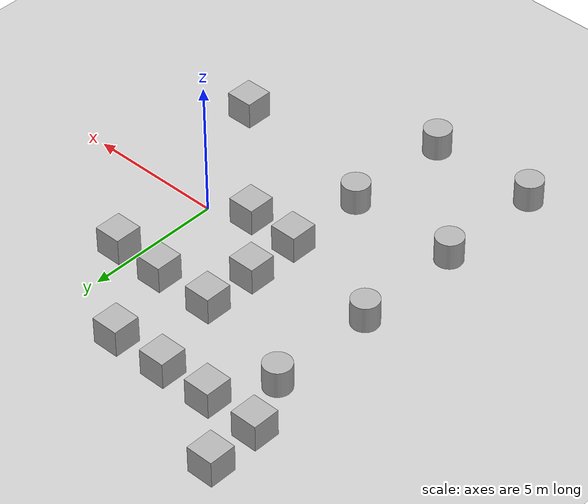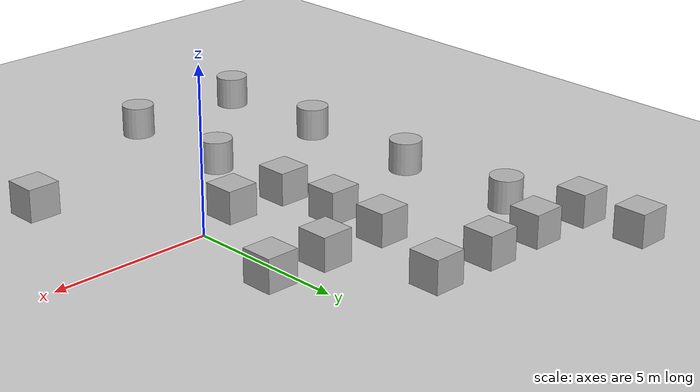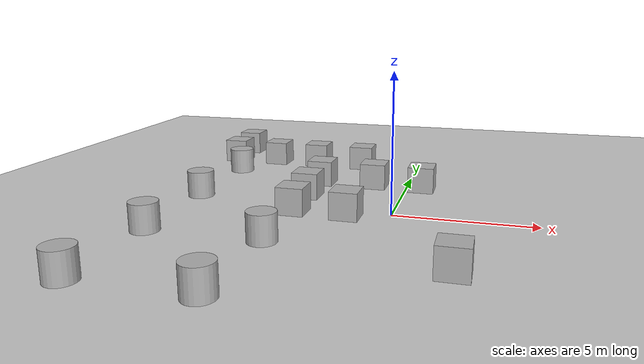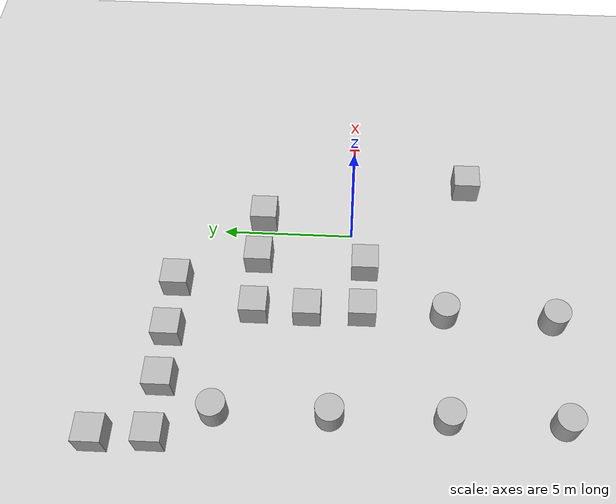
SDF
<sdf version="1.12">
 <world name="empty">
  <model name="ground_plane">
   <static>true</static>
   <link name="link">
    <collision name="collision">
     <geometry><plane><normal>0 0 1</normal><size>100 100</size></plane></geometry>
    </collision>
    <visual name="visual">
     <geometry><plane><normal>0 0 1</normal><size>100 100</size></plane></geometry>
     <material>
      <ambient>0.800000012 0.800000012 0.800000012 1</ambient>
      <diffuse>0.800000012 0.800000012 0.800000012 1</diffuse>
      <specular>0.800000012 0.800000012 0.800000012 1</specular>
     </material>
    </visual>
    <inertial>
     <mass>1</mass>
     <inertia><ixx>1</ixx><ixy>0</ixy><ixz>0</ixz><iyy>1</iyy><iyz>0</iyz><izz>1</izz></inertia>
    </inertial>
   </link>
  </model>
  <model name="box_1">
   <pose>-1.4900658982286914 -0.54602538299168302 0.49999999990199806 6.2287739151293738e-22 9.3279666454713669e-22 -3.6315533669320137e-22</pose>
   <link name="box_link">
    <inertial>
     <inertia><ixx>0.16666</ixx><ixy>0</ixy><ixz>0</ixz><iyy>0.16666</iyy><iyz>0</iyz><izz>0.16666</izz></inertia>
     <mass>1</mass>
    </inertial>
    <collision name="box_collision"><geometry><box><size>1 1 1</size></box></geometry></collision>
    <visual name="box_visual">
     <geometry><box><size>1 1 1</size></box></geometry>
     <material>
      <ambient>0.300000012 0.300000012 0.300000012 1</ambient>
      <diffuse>0.699999988 0.699999988 0.699999988 1</diffuse>
      <specular>1 1 1 1</specular>
     </material>
    </visual>
   </link>
   <static>false</static>
  </model>
  <model name="box_1_1">
   <pose>-3.4321913259403338 -0.49788729154501388 0.49999999990199806 6.2287739151293738e-22 9.3279666454713669e-22 -3.6315533669320137e-22</pose>
   <link name="box_link">
    <inertial>
     <inertia><ixx>0.16666</ixx><ixy>0</ixy><ixz>0</ixz><iyy>0.16666</iyy><iyz>0</iyz><izz>0.16666</izz></inertia>
     <mass>1</mass>
    </inertial>
    <collision name="box_collision"><geometry><box><size>1 1 1</size></box></geometry></collision>
    <visual name="box_visual">
     <geometry><box><size>1 1 1</size></box></geometry>
     <material>
      <ambient>0.300000012 0.300000012 0.300000012 1</ambient>
      <diffuse>0.699999988 0.699999988 0.699999988 1</diffuse>
      <specular>1 1 1 1</specular>
     </material>
    </visual>
   </link>
   <static>false</static>
  </model>
  <model name="box_1_2">
   <pose>-3.5110510468009632 1.515988647667496 0.49999999990199806 -8.9387997357110183e-22 2.0358842462432641e-22 -5.764668221621625e-23</pose>
   <link name="box_link">
    <inertial>
     <inertia><ixx>0.16666</ixx><ixy>0</ixy><ixz>0</ixz><iyy>0.16666</iyy><iyz>0</iyz><izz>0.16666</izz></inertia>
     <mass>1</mass>
    </inertial>
    <collision name="box_collision"><geometry><box><size>1 1 1</size></box></geometry></collision>
    <visual name="box_visual">
     <geometry><box><size>1 1 1</size></box></geometry>
     <material>
      <ambient>0.300000012 0.300000012 0.300000012 1</ambient>
      <diffuse>0.699999988 0.699999988 0.699999988 1</diffuse>
      <specular>1 1 1 1</specular>
     </material>
    </visual>
   </link>
   <static>false</static>
  </model>
  <model name="box_1_3">
   <pose>-3.4798979327555379 3.4697738362355128 0.49999999990199806 6.2287739151293738e-22 9.3279666454713669e-22 -3.6315533669320137e-22</pose>
   <link name="box_link">
    <inertial>
     <inertia><ixx>0.16666</ixx><ixy>0</ixy><ixz>0</ixz><iyy>0.16666</iyy><iyz>0</iyz><izz>0.16666</izz></inertia>
     <mass>1</mass>
    </inertial>
    <collision name="box_collision"><geometry><box><size>1 1 1</size></box></geometry></collision>
    <visual name="box_visual">
     <geometry><box><size>1 1 1</size></box></geometry>
     <material>
      <ambient>0.300000012 0.300000012 0.300000012 1</ambient>
      <diffuse>0.699999988 0.699999988 0.699999988 1</diffuse>
      <specular>1 1 1 1</specular>
     </material>
    </visual>
   </link>
   <static>false</static>
  </model>
  <model name="box_1_4">
   <pose>-1.3025653694116466 3.4933697077790953 0.49999999990199806 6.2287739151293738e-22 9.3279666454713669e-22 -3.6315533669320137e-22</pose>
   <link name="box_link">
    <inertial>
     <inertia><ixx>0.16666</ixx><ixy>0</ixy><ixz>0</ixz><iyy>0.16666</iyy><iyz>0</iyz><izz>0.16666</izz></inertia>
     <mass>1</mass>
    </inertial>
    <collision name="box_collision"><geometry><box><size>1 1 1</size></box></geometry></collision>
    <visual name="box_visual">
     <geometry><box><size>1 1 1</size></box></geometry>
     <material>
      <ambient>0.300000012 0.300000012 0.300000012 1</ambient>
      <diffuse>0.699999988 0.699999988 0.699999988 1</diffuse>
      <specular>1 1 1 1</specular>
     </material>
    </visual>
   </link>
   <static>false</static>
  </model>
  <model name="box_1_5">
   <pose>0.6158261353747011 3.4449937040749985 0.49999999990199806 -4.0737699217676438e-22 -3.0870083691057572e-21 2.019312431259651e-22</pose>
   <link name="box_link">
    <inertial>
     <inertia><ixx>0.16666</ixx><ixy>0</ixy><ixz>0</ixz><iyy>0.16666</iyy><iyz>0</iyz><izz>0.16666</izz></inertia>
     <mass>1</mass>
    </inertial>
    <collision name="box_collision"><geometry><box><size>1 1 1</size></box></geometry></collision>
    <visual name="box_visual">
     <geometry><box><size>1 1 1</size></box></geometry>
     <material>
      <ambient>0.300000012 0.300000012 0.300000012 1</ambient>
      <diffuse>0.699999988 0.699999988 0.699999988 1</diffuse>
      <specular>1 1 1 1</specular>
     </material>
    </visual>
   </link>
   <static>false</static>
  </model>
  <model name="box_1_13">
   <pose>2.4728567501726895 -4.5199002084521949 0.49999999990199806 6.2287739151293738e-22 9.3279666454713669e-22 -3.6315533669320137e-22</pose>
   <link name="box_link">
    <inertial>
     <inertia><ixx>0.16666</ixx><ixy>0</ixy><ixz>0</ixz><iyy>0.16666</iyy><iyz>0</iyz><izz>0.16666</izz></inertia>
     <mass>1</mass>
    </inertial>
    <collision name="box_collision"><geometry><box><size>1 1 1</size></box></geometry></collision>
    <visual name="box_visual">
     <geometry><box><size>1 1 1</size></box></geometry>
     <material>
      <ambient>0.300000012 0.300000012 0.300000012 1</ambient>
      <diffuse>0.699999988 0.699999988 0.699999988 1</diffuse>
      <specular>1 1 1 1</specular>
     </material>
    </visual>
   </link>
   <static>false</static>
  </model>
  <model name="box_1_16">
   <pose>-6.4543298537715392 6.4618063745167431 0.49999999990199806 6.2287739151293738e-22 9.3279666454713669e-22 -3.6315533669320137e-22</pose>
   <link name="box_link">
    <inertial>
     <inertia><ixx>0.16666</ixx><ixy>0</ixy><ixz>0</ixz><iyy>0.16666</iyy><iyz>0</iyz><izz>0.16666</izz></inertia>
     <mass>1</mass>
    </inertial>
    <collision name="box_collision"><geometry><box><size>1 1 1</size></box></geometry></collision>
    <visual name="box_visual">
     <geometry><box><size>1 1 1</size></box></geometry>
     <material>
      <ambient>0.300000012 0.300000012 0.300000012 1</ambient>
      <diffuse>0.699999988 0.699999988 0.699999988 1</diffuse>
      <specular>1 1 1 1</specular>
     </material>
    </visual>
   </link>
   <static>false</static>
  </model>
  <model name="box_1_17">
   <pose>-8.4564350831453936 6.4741723821877857 0.49999999990199806 6.2287739151293738e-22 9.3279666454713669e-22 -3.6315533669320137e-22</pose>
   <link name="box_link">
    <inertial>
     <inertia><ixx>0.16666</ixx><ixy>0</ixy><ixz>0</ixz><iyy>0.16666</iyy><iyz>0</iyz><izz>0.16666</izz></inertia>
     <mass>1</mass>
    </inertial>
    <collision name="box_collision"><geometry><box><size>1 1 1</size></box></geometry></collision>
    <visual name="box_visual">
     <geometry><box><size>1 1 1</size></box></geometry>
     <material>
      <ambient>0.300000012 0.300000012 0.300000012 1</ambient>
      <diffuse>0.699999988 0.699999988 0.699999988 1</diffuse>
      <specular>1 1 1 1</specular>
     </material>
    </visual>
   </link>
   <static>false</static>
  </model>
  <model name="box_1_18">
   <pose>-8.5521222252819964 8.4236275462564336 0.49999999990199806 6.2287739151293738e-22 9.3279666454713669e-22 -3.6315533669320137e-22</pose>
   <link name="box_link">
    <inertial>
     <inertia><ixx>0.16666</ixx><ixy>0</ixy><ixz>0</ixz><iyy>0.16666</iyy><iyz>0</iyz><izz>0.16666</izz></inertia>
     <mass>1</mass>
    </inertial>
    <collision name="box_collision"><geometry><box><size>1 1 1</size></box></geometry></collision>
    <visual name="box_visual">
     <geometry><box><size>1 1 1</size></box></geometry>
     <material>
      <ambient>0.300000012 0.300000012 0.300000012 1</ambient>
      <diffuse>0.699999988 0.699999988 0.699999988 1</diffuse>
      <specular>1 1 1 1</specular>
     </material>
    </visual>
   </link>
   <static>false</static>
  </model>
  <model name="box_1_19">
   <pose>-4.5259752952845904 6.4878449526403159 0.49999999990199806 6.2287739151293738e-22 9.3279666454713669e-22 -3.6315533669320137e-22</pose>
   <link name="box_link">
    <inertial>
     <inertia><ixx>0.16666</ixx><ixy>0</ixy><ixz>0</ixz><iyy>0.16666</iyy><iyz>0</iyz><izz>0.16666</izz></inertia>
     <mass>1</mass>
    </inertial>
    <collision name="box_collision"><geometry><box><size>1 1 1</size></box></geometry></collision>
    <visual name="box_visual">
     <geometry><box><size>1 1 1</size></box></geometry>
     <material>
      <ambient>0.300000012 0.300000012 0.300000012 1</ambient>
      <diffuse>0.699999988 0.699999988 0.699999988 1</diffuse>
      <specular>1 1 1 1</specular>
     </material>
    </visual>
   </link>
   <static>false</static>
  </model>
  <model name="box_1_20">
   <pose>-2.4489593069959898 6.4749623607507081 0.49999999990199806 6.2287739151293738e-22 9.3279666454713669e-22 -3.6315533669320137e-22</pose>
   <link name="box_link">
    <inertial>
     <inertia><ixx>0.16666</ixx><ixy>0</ixy><ixz>0</ixz><iyy>0.16666</iyy><iyz>0</iyz><izz>0.16666</izz></inertia>
     <mass>1</mass>
    </inertial>
    <collision name="box_collision"><geometry><box><size>1 1 1</size></box></geometry></collision>
    <visual name="box_visual">
     <geometry><box><size>1 1 1</size></box></geometry>
     <material>
      <ambient>0.300000012 0.300000012 0.300000012 1</ambient>
      <diffuse>0.699999988 0.699999988 0.699999988 1</diffuse>
      <specular>1 1 1 1</specular>
     </material>
    </visual>
   </link>
   <static>false</static>
  </model>
  <model name="cylinder">
   <pose>-7.5034886828662142 -7.5356395863249155 0.49999942638036005 1.3003385462673683e-19 5.0221363440529492e-20 3.5897683165485237e-20</pose>
   <link name="cylinder_link">
    <inertial>
     <inertia>
      <ixx>0.14580000000000001</ixx>
      <ixy>0</ixy>
      <ixz>0</ixz>
      <iyy>0.14580000000000001</iyy>
      <iyz>0</iyz>
      <izz>0.125</izz>
     </inertia>
     <mass>1</mass>
    </inertial>
    <collision name="cylinder_collision">
     <geometry><cylinder><radius>0.5</radius><length>1</length></cylinder></geometry>
    </collision>
    <visual name="cylinder_visual">
     <geometry><cylinder><radius>0.5</radius><length>1</length></cylinder></geometry>
     <material>
      <ambient>0.300000012 0.300000012 0.300000012 1</ambient>
      <diffuse>0.699999988 0.699999988 0.699999988 1</diffuse>
      <specular>1 1 1 1</specular>
     </material>
    </visual>
   </link>
   <static>false</static>
  </model>
  <model name="cylinder_1">
   <pose>-3.5229897950858122 -7.4892807905877419 0.49999942638036005 -9.4142563092837556e-20 4.3433581782627262e-19 3.1561358514679255e-21</pose>
   <link name="cylinder_link">
    <inertial>
     <inertia>
      <ixx>0.14580000000000001</ixx>
      <ixy>0</ixy>
      <ixz>0</ixz>
      <iyy>0.14580000000000001</iyy>
      <iyz>0</iyz>
      <izz>0.125</izz>
     </inertia>
     <mass>1</mass>
    </inertial>
    <collision name="cylinder_collision">
     <geometry><cylinder><radius>0.5</radius><length>1</length></cylinder></geometry>
    </collision>
    <visual name="cylinder_visual">
     <geometry><cylinder><radius>0.5</radius><length>1</length></cylinder></geometry>
     <material>
      <ambient>0.300000012 0.300000012 0.300000012 1</ambient>
      <diffuse>0.699999988 0.699999988 0.699999988 1</diffuse>
      <specular>1 1 1 1</specular>
     </material>
    </visual>
   </link>
   <static>false</static>
  </model>
  <model name="cylinder_2">
   <pose>-7.4695162407103108 -3.5577180057968505 0.49999942638036005 1.6443435618698702e-19 1.8083429672608237e-19 -2.1765617205006834e-20</pose>
   <link name="cylinder_link">
    <inertial>
     <inertia>
      <ixx>0.14580000000000001</ixx>
      <ixy>0</ixy>
      <ixz>0</ixz>
      <iyy>0.14580000000000001</iyy>
      <iyz>0</iyz>
      <izz>0.125</izz>
     </inertia>
     <mass>1</mass>
    </inertial>
    <collision name="cylinder_collision">
     <geometry><cylinder><radius>0.5</radius><length>1</length></cylinder></geometry>
    </collision>
    <visual name="cylinder_visual">
     <geometry><cylinder><radius>0.5</radius><length>1</length></cylinder></geometry>
     <material>
      <ambient>0.300000012 0.300000012 0.300000012 1</ambient>
      <diffuse>0.699999988 0.699999988 0.699999988 1</diffuse>
      <specular>1 1 1 1</specular>
     </material>
    </visual>
   </link>
   <static>false</static>
  </model>
  <model name="cylinder_3">
   <pose>-3.4250254531150892 -3.5106203968207144 0.49999942638036005 6.4008389221800053e-20 -4.6949551819243939e-20 9.5764126821128648e-21</pose>
   <link name="cylinder_link">
    <inertial>
     <inertia>
      <ixx>0.14580000000000001</ixx>
      <ixy>0</ixy>
      <ixz>0</ixz>
      <iyy>0.14580000000000001</iyy>
      <iyz>0</iyz>
      <izz>0.125</izz>
     </inertia>
     <mass>1</mass>
    </inertial>
    <collision name="cylinder_collision">
     <geometry><cylinder><radius>0.5</radius><length>1</length></cylinder></geometry>
    </collision>
    <visual name="cylinder_visual">
     <geometry><cylinder><radius>0.5</radius><length>1</length></cylinder></geometry>
     <material>
      <ambient>0.300000012 0.300000012 0.300000012 1</ambient>
      <diffuse>0.699999988 0.699999988 0.699999988 1</diffuse>
      <specular>1 1 1 1</specular>
     </material>
    </visual>
   </link>
   <static>false</static>
  </model>
  <model name="cylinder_6">
   <pose>-7.5088465659534389 0.51346125337146686 0.49999942638036005 -1.0388863086857693e-19 7.4283560728621848e-20 -2.3612541355203604e-20</pose>
   <link name="cylinder_link">
    <inertial>
     <inertia>
      <ixx>0.14580000000000001</ixx>
      <ixy>0</ixy>
      <ixz>0</ixz>
      <iyy>0.14580000000000001</iyy>
      <iyz>0</iyz>
      <izz>0.125</izz>
     </inertia>
     <mass>1</mass>
    </inertial>
    <collision name="cylinder_collision">
     <geometry><cylinder><radius>0.5</radius><length>1</length></cylinder></geometry>
    </collision>
    <visual name="cylinder_visual">
     <geometry><cylinder><radius>0.5</radius><length>1</length></cylinder></geometry>
     <material>
      <ambient>0.300000012 0.300000012 0.300000012 1</ambient>
      <diffuse>0.699999988 0.699999988 0.699999988 1</diffuse>
      <specular>1 1 1 1</specular>
     </material>
    </visual>
   </link>
   <static>false</static>
  </model>
  <model name="cylinder_7">
   <pose>-7.5119164874084543 4.4947890745498436 0.49999942638036005 2.9812349880790831e-19 -2.7550761543132068e-19 -2.7293335336718607e-20</pose>
   <link name="cylinder_link">
    <inertial>
     <inertia>
      <ixx>0.14580000000000001</ixx>
      <ixy>0</ixy>
      <ixz>0</ixz>
      <iyy>0.14580000000000001</iyy>
      <iyz>0</iyz>
      <izz>0.125</izz>
     </inertia>
     <mass>1</mass>
    </inertial>
    <collision name="cylinder_collision">
     <geometry><cylinder><radius>0.5</radius><length>1</length></cylinder></geometry>
    </collision>
    <visual name="cylinder_visual">
     <geometry><cylinder><radius>0.5</radius><length>1</length></cylinder></geometry>
     <material>
      <ambient>0.300000012 0.300000012 0.300000012 1</ambient>
      <diffuse>0.699999988 0.699999988 0.699999988 1</diffuse>
      <specular>1 1 1 1</specular>
     </material>
    </visual>
   </link>
   <static>false</static>
  </model>
 </world>
</sdf>
